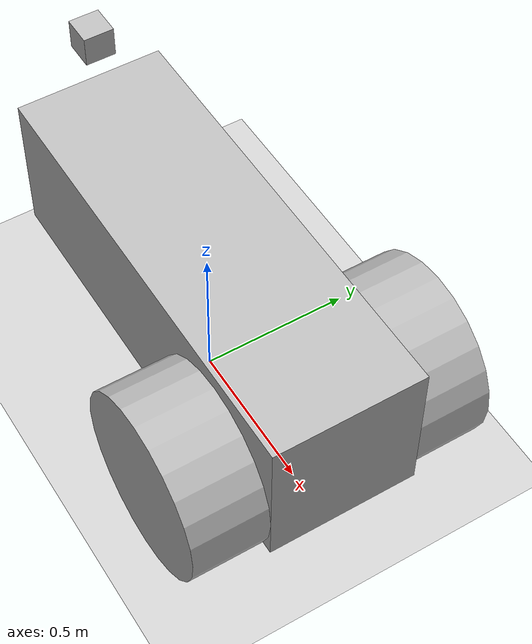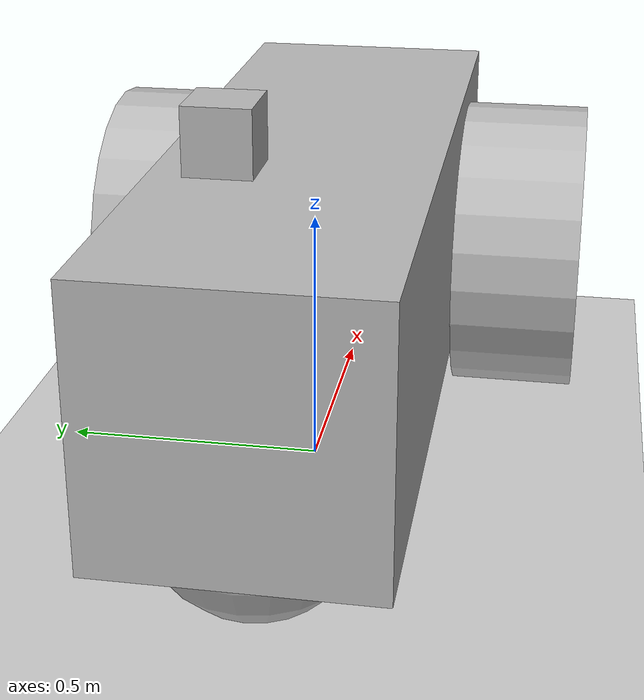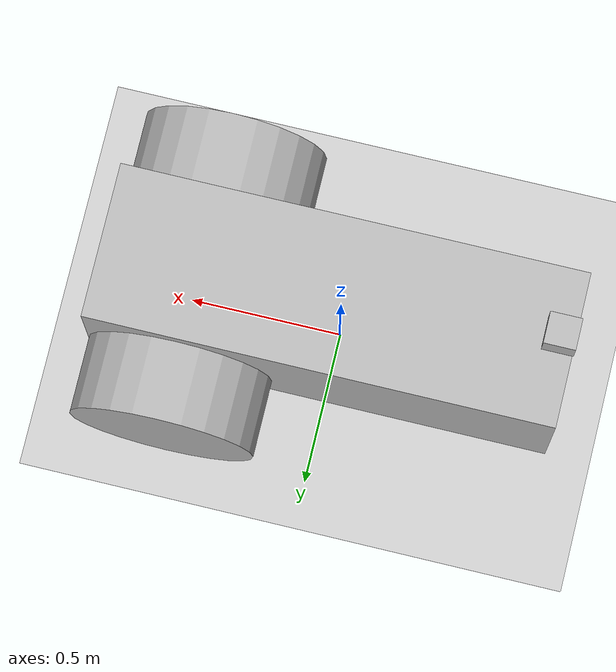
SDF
<sdf version="1.6">
 <world name="default">
  <light name="sun" type="directional">
   <pose>0 0 10 0 -0 0</pose>
   <diffuse>0.8 0.8 0.8 1</diffuse>
   <specular>0.2 0.2 0.2 1</specular>
   <attenuation>
    <range>1000</range>
    <constant>0.9</constant>
    <linear>0.01</linear>
    <quadratic>0.001</quadratic>
   </attenuation>
   <direction>-0.5 0.1 -0.9</direction>
  </light>
  <model name="ground_plane">
   <static>1</static>
   <link name="link">
    <collision name="collision">
     <geometry><plane><normal>0 0 1</normal><size>100 100</size></plane></geometry>
     <surface>
      <contact><collide_bitmask>65535</collide_bitmask></contact>
      <friction><ode><mu>100</mu><mu2>50</mu2></ode></friction>
     </surface>
    </collision>
    <visual name="visual">
     <cast_shadows>0</cast_shadows>
     <geometry><plane><normal>0 0 1</normal><size>100 100</size></plane></geometry>
     <material>
      <script><uri>file://media/materials/scripts/gazebo.material</uri><name>Gazebo/Grey</name></script>
     </material>
    </visual>
   </link>
  </model>
  <gravity>0 0 -9.8</gravity>
  <magnetic_field>6e-06 2.3e-05 -4.2e-05</magnetic_field>
  <atmosphere type="adiabatic"/>
  <physics name="default_physics" default="0" type="ode">
   <max_step_size>0.001</max_step_size>
   <real_time_factor>1</real_time_factor>
   <real_time_update_rate>1000</real_time_update_rate>
  </physics>
  <scene><ambient>0.4 0.4 0.4 1</ambient><background>0.7 0.7 0.7 1</background><shadows>1</shadows></scene>
  <spherical_coordinates>
   <surface_model>EARTH_WGS84</surface_model>
   <latitude_deg>0</latitude_deg>
   <longitude_deg>0</longitude_deg>
   <elevation>0</elevation>
   <heading_deg>0</heading_deg>
  </spherical_coordinates>
  <model name="fcar">
   <link name="caster">
    <inertial>
     <mass>1</mass>
     <inertia><ixx>0.1</ixx><ixy>0</ixy><ixz>0</ixz><iyy>0.1</iyy><iyz>0</iyz><izz>0.1</izz></inertia>
    </inertial>
    <pose>-0.55 -0 0.2 0 -0 0</pose>
    <visual name="visual">
     <geometry><sphere><radius>0.2</radius></sphere></geometry>
     <material><shader type="pixel"/><emissive>0 0 0 1</emissive></material>
    </visual>
    <collision name="collision">
     <geometry><sphere><radius>0.2</radius></sphere></geometry>
     <surface>
      <friction>
       <ode><mu>1</mu><mu2>1</mu2><fdir1>0 0 0</fdir1><slip1>0</slip1><slip2>0</slip2></ode>
       <torsional>
        <coefficient>1</coefficient>
        <patch_radius>0</patch_radius>
        <surface_radius>0</surface_radius>
        <use_patch_radius>1</use_patch_radius>
        <ode><slip>0</slip></ode>
       </torsional>
      </friction>
      <bounce><restitution_coefficient>0</restitution_coefficient><threshold>1e+06</threshold></bounce>
      <contact>
       <collide_without_contact>0</collide_without_contact>
       <collide_without_contact_bitmask>1</collide_without_contact_bitmask>
       <collide_bitmask>1</collide_bitmask>
       <ode>
        <soft_cfm>0</soft_cfm>
        <soft_erp>0.2</soft_erp>
        <kp>1e+13</kp>
        <kd>1</kd>
        <max_vel>0.01</max_vel>
        <min_depth>0</min_depth>
       </ode>
       <bullet>
        <split_impulse>1</split_impulse>
        <split_impulse_penetration_threshold>-0.01</split_impulse_penetration_threshold>
        <soft_cfm>0</soft_cfm>
        <soft_erp>0.2</soft_erp>
        <kp>1e+13</kp>
        <kd>1</kd>
       </bullet>
      </contact>
     </surface>
    </collision>
   </link>
   <link name="left_wheel">
    <inertial>
     <mass>1</mass>
     <inertia><ixx>0.145833</ixx><ixy>0</ixy><ixz>0</ixz><iyy>0.145833</iyy><iyz>0</iyz><izz>0.125</izz></inertia>
    </inertial>
    <pose>0.45 -0.375029 0.3 1.5707 -0 0</pose>
    <visual name="visual">
     <geometry><cylinder><radius>0.3</radius><length>0.25</length></cylinder></geometry>
     <material><shader type="pixel"/></material>
    </visual>
    <collision name="collision">
     <geometry><cylinder><radius>0.3</radius><length>0.25</length></cylinder></geometry>
     <surface>
      <friction>
       <ode><mu>1</mu><mu2>1</mu2><fdir1>0 0 0</fdir1><slip1>0</slip1><slip2>0</slip2></ode>
       <torsional>
        <coefficient>1</coefficient>
        <patch_radius>0</patch_radius>
        <surface_radius>0</surface_radius>
        <use_patch_radius>1</use_patch_radius>
        <ode><slip>0</slip></ode>
       </torsional>
      </friction>
      <bounce><restitution_coefficient>0</restitution_coefficient><threshold>1e+06</threshold></bounce>
      <contact>
       <collide_without_contact>0</collide_without_contact>
       <collide_without_contact_bitmask>1</collide_without_contact_bitmask>
       <collide_bitmask>1</collide_bitmask>
       <ode>
        <soft_cfm>0</soft_cfm>
        <soft_erp>0.2</soft_erp>
        <kp>1e+13</kp>
        <kd>1</kd>
        <max_vel>0.01</max_vel>
        <min_depth>0</min_depth>
       </ode>
       <bullet>
        <split_impulse>1</split_impulse>
        <split_impulse_penetration_threshold>-0.01</split_impulse_penetration_threshold>
        <soft_cfm>0</soft_cfm>
        <soft_erp>0.2</soft_erp>
        <kp>1e+13</kp>
        <kd>1</kd>
       </bullet>
      </contact>
     </surface>
    </collision>
   </link>
   <link name="mbody">
    <inertial>
     <mass>0.5</mass>
     <inertia>
      <ixx>0.0287018</ixx>
      <ixy>0</ixy>
      <ixz>0</ixz>
      <iyy>0.0850413</iyy>
      <iyz>0</iyz>
      <izz>0.0951773</izz>
     </inertia>
    </inertial>
    <pose>-0 0 0.4 0 -0 0</pose>
    <visual name="visual">
     <geometry><box><size>1.5 0.5 0.5</size></box></geometry>
     <material><shader type="pixel"/><emissive>0 0 0 1</emissive></material>
    </visual>
    <collision name="collision">
     <geometry><box><size>1.5 0.5 0.5</size></box></geometry>
     <surface>
      <friction>
       <ode><mu>1</mu><mu2>1</mu2><fdir1>0 0 0</fdir1><slip1>0</slip1><slip2>0</slip2></ode>
       <torsional>
        <coefficient>1</coefficient>
        <patch_radius>0</patch_radius>
        <surface_radius>0</surface_radius>
        <use_patch_radius>1</use_patch_radius>
        <ode><slip>0</slip></ode>
       </torsional>
      </friction>
      <bounce><restitution_coefficient>0</restitution_coefficient><threshold>1e+06</threshold></bounce>
      <contact>
       <collide_without_contact>0</collide_without_contact>
       <collide_without_contact_bitmask>1</collide_without_contact_bitmask>
       <collide_bitmask>1</collide_bitmask>
       <ode>
        <soft_cfm>0</soft_cfm>
        <soft_erp>0.2</soft_erp>
        <kp>1e+13</kp>
        <kd>1</kd>
        <max_vel>0.01</max_vel>
        <min_depth>0</min_depth>
       </ode>
       <bullet>
        <split_impulse>1</split_impulse>
        <split_impulse_penetration_threshold>-0.01</split_impulse_penetration_threshold>
        <soft_cfm>0</soft_cfm>
        <soft_erp>0.2</soft_erp>
        <kp>1e+13</kp>
        <kd>1</kd>
       </bullet>
      </contact>
     </surface>
    </collision>
   </link>
   <link name="right_wheel">
    <inertial>
     <mass>1</mass>
     <inertia><ixx>0.145833</ixx><ixy>0</ixy><ixz>0</ixz><iyy>0.145833</iyy><iyz>0</iyz><izz>0.125</izz></inertia>
    </inertial>
    <pose>0.45 0.375029 0.3 1.5707 -0 0</pose>
    <visual name="visual">
     <geometry><cylinder><radius>0.3</radius><length>0.25</length></cylinder></geometry>
     <material><shader type="pixel"/></material>
    </visual>
    <collision name="collision">
     <geometry><cylinder><radius>0.3</radius><length>0.25</length></cylinder></geometry>
     <surface>
      <friction>
       <ode><mu>1</mu><mu2>1</mu2><fdir1>0 0 0</fdir1><slip1>0</slip1><slip2>0</slip2></ode>
       <torsional>
        <coefficient>1</coefficient>
        <patch_radius>0</patch_radius>
        <surface_radius>0</surface_radius>
        <use_patch_radius>1</use_patch_radius>
        <ode><slip>0</slip></ode>
       </torsional>
      </friction>
      <bounce><restitution_coefficient>0</restitution_coefficient><threshold>1e+06</threshold></bounce>
      <contact>
       <collide_without_contact>0</collide_without_contact>
       <collide_without_contact_bitmask>1</collide_without_contact_bitmask>
       <collide_bitmask>1</collide_bitmask>
       <ode>
        <soft_cfm>0</soft_cfm>
        <soft_erp>0.2</soft_erp>
        <kp>1e+13</kp>
        <kd>1</kd>
        <max_vel>0.01</max_vel>
        <min_depth>0</min_depth>
       </ode>
       <bullet>
        <split_impulse>1</split_impulse>
        <split_impulse_penetration_threshold>-0.01</split_impulse_penetration_threshold>
        <soft_cfm>0</soft_cfm>
        <soft_erp>0.2</soft_erp>
        <kp>1e+13</kp>
        <kd>1</kd>
       </bullet>
      </contact>
     </surface>
    </collision>
   </link>
   <model name="camera">
    <pose>-0.698828 0.002571 0.862719 0 -0 3.14132</pose>
    <link name="link">
     <inertial>
      <mass>0.1</mass>
      <inertia>
       <ixx>0.000166667</ixx>
       <iyy>0.000166667</iyy>
       <izz>0.000166667</izz>
       <ixy>0</ixy>
       <ixz>0</ixz>
       <iyz>0</iyz>
      </inertia>
     </inertial>
     <collision name="collision"><geometry><box><size>0.1 0.1 0.1</size></box></geometry></collision>
     <visual name="visual"><geometry><box><size>0.1 0.1 0.1</size></box></geometry></visual>
     <sensor name="camera" type="camera">
      <camera name="__default__">
       <horizontal_fov>1.047</horizontal_fov>
       <image><width>320</width><height>240</height></image>
       <clip><near>0.1</near><far>100</far></clip>
      </camera>
      <always_on>1</always_on>
      <update_rate>30</update_rate>
      <visualize>1</visualize>
      <plugin name="cam" filename="libgazebo_ros_camera.so">
       <ros>
        <namespace>/cam</namespace>
        <argument>image_raw:=custom_img</argument>
        <argument>camera_test_info:=custom_info</argument>
       </ros>
       <camera_name>custom_camera</camera_name>
       <frame_name>custom_frame</frame_name>
       <hack_baseline>0.07</hack_baseline>
      </plugin>
     </sensor>
    </link>
   </model>
   <joint name="c_joint" type="fixed">
    <parent>mbody</parent>
    <child>camera::link</child>
    <physics>
     <ode><limit><cfm>0</cfm><erp>0.2</erp></limit><suspension><cfm>0</cfm><erp>0.2</erp></suspension></ode>
    </physics>
   </joint>
   <joint name="left_joint" type="revolute">
    <parent>mbody</parent>
    <child>left_wheel</child>
    <axis>
     <xyz>0 0 1</xyz>
     <use_parent_model_frame>0</use_parent_model_frame>
     <limit>
      <lower>-1.79769e+308</lower>
      <upper>1.79769e+308</upper>
      <effort>-1</effort>
      <velocity>-1</velocity>
     </limit>
     <dynamics>
      <spring_reference>0</spring_reference>
      <spring_stiffness>0</spring_stiffness>
      <damping>0</damping>
      <friction>0</friction>
     </dynamics>
    </axis>
    <physics>
     <ode><limit><cfm>0</cfm><erp>0.2</erp></limit><suspension><cfm>0</cfm><erp>0.2</erp></suspension></ode>
    </physics>
   </joint>
   <joint name="mbody_JOINT_0" type="ball">
    <parent>mbody</parent>
    <child>caster</child>
    <physics>
     <ode><limit><cfm>0</cfm><erp>0.2</erp></limit><suspension><cfm>0</cfm><erp>0.2</erp></suspension></ode>
    </physics>
   </joint>
   <joint name="right_joint" type="revolute">
    <parent>mbody</parent>
    <child>right_wheel</child>
    <axis>
     <xyz>0 0 1</xyz>
     <use_parent_model_frame>0</use_parent_model_frame>
     <limit>
      <lower>-1.79769e+308</lower>
      <upper>1.79769e+308</upper>
      <effort>-1</effort>
      <velocity>-1</velocity>
     </limit>
     <dynamics>
      <spring_reference>0</spring_reference>
      <spring_stiffness>0</spring_stiffness>
      <damping>0</damping>
      <friction>0</friction>
     </dynamics>
    </axis>
    <physics>
     <ode><limit><cfm>0</cfm><erp>0.2</erp></limit><suspension><cfm>0</cfm><erp>0.2</erp></suspension></ode>
    </physics>
   </joint>
   <static>0</static>
   <plugin name="diff_drive" filename="libgazebo_ros_diff_drive.so">
    <ros><namespace>/pos</namespace><argument>cmd_vel:=cmd_pos</argument><argument>odom:=odom_pos</argument></ros>
    <left_joint>left_joint</left_joint>
    <right_joint>right_joint</right_joint>
    <wheel_separation>1.25</wheel_separation>
    <wheel_diameter>0.6</wheel_diameter>
    <max_wheel_torque>20</max_wheel_torque>
    <max_wheel_acceleration>1.0</max_wheel_acceleration>
    <publish_odom>1</publish_odom>
    <publish_odom_tf>1</publish_odom_tf>
    <publish_wheel_tf>1</publish_wheel_tf>
    <odometry_frame>odom_demo</odometry_frame>
    <robot_base_frame>chassis</robot_base_frame>
   </plugin>
   <pose>0.014905 0.002881 0 0 -0 0</pose>
  </model>
 </world>
</sdf>
